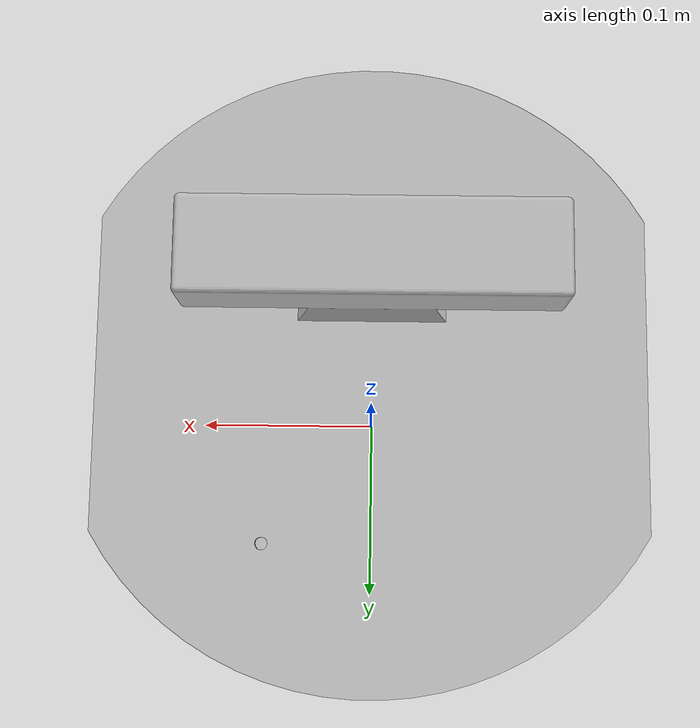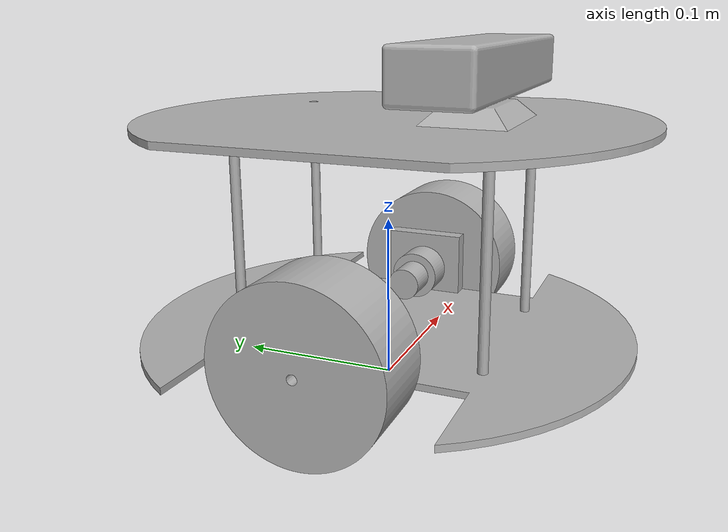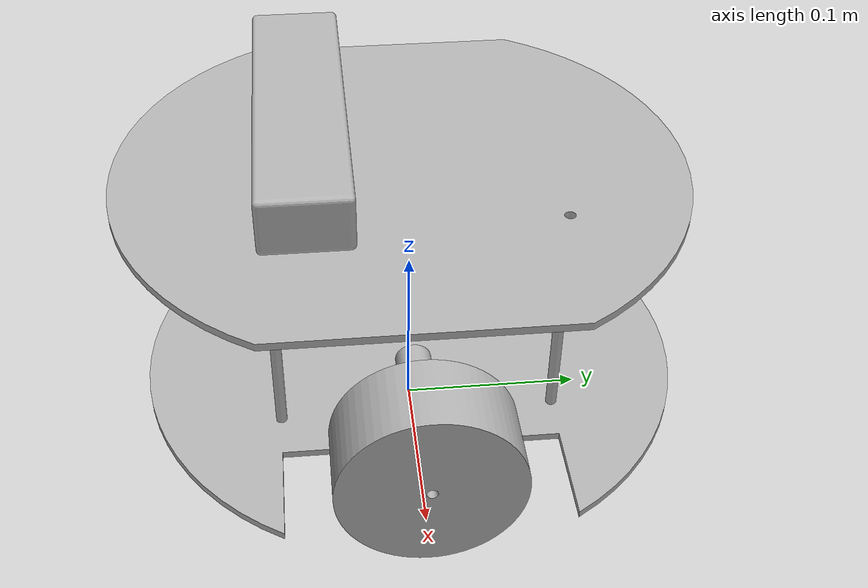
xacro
<?xml version="1.0" ?>
<robot name="kinectbot" xmlns:xacro="http://www.ros.org/wiki/xacro">

<xacro:include filename="$(find kinectbot_description)/urdf/materials.xacro" />
<xacro:include filename="$(find kinectbot_description)/gazebo/kinectbot_materials.gazebo" />
<xacro:include filename="$(find kinectbot_description)/gazebo/kinectbot_plugins.gazebo" />
<xacro:include filename="$(find kinectbot_description)/gazebo/kinectbot_physics.gazebo" />

<link name="base_link">
  <inertial>
    <origin rpy="0 0 0" xyz="0.0 6.126832052068927e-15 0.03551931309841485"/>
    <mass value="0.28304512232760054"/>
    <inertia ixx="0.001756" ixy="0.0" ixz="0.0" iyy="0.000924" iyz="-0.0" izz="0.002629"/>
  </inertial>
  <visual>
    <origin rpy="0 0 0" xyz="0 0 0"/>
    <geometry>
      <mesh filename="package://kinectbot_description/meshes/base_link.stl" scale="0.001 0.001 0.001"/>
    </geometry>
    <material name="silver"/>
  </visual>
  <collision>
    <origin rpy="0 0 0" xyz="0 0 0"/>
    <geometry>
      <mesh filename="package://kinectbot_description/meshes/base_link.stl" scale="0.001 0.001 0.001"/>
    </geometry>
  </collision>
</link>

<link name="motor_left_1">
  <inertial>
    <origin rpy="0 0 0" xyz="0.02352734922861146 9.900213718158758e-15 2.0816681711721685e-17"/>
    <mass value="0.026610672076673177"/>
    <inertia ixx="2e-06" ixy="0.0" ixz="-0.0" iyy="6e-06" iyz="-0.0" izz="6e-06"/>
  </inertial>
  <visual>
    <origin rpy="0 0 0" xyz="0.075 -0.0 -0.05005"/>
    <geometry>
      <mesh filename="package://kinectbot_description/meshes/motor_left_1.stl" scale="0.001 0.001 0.001"/>
    </geometry>
    <material name="silver"/>
  </visual>
  <collision>
    <origin rpy="0 0 0" xyz="0.075 -0.0 -0.05005"/>
    <geometry>
      <mesh filename="package://kinectbot_description/meshes/motor_left_1.stl" scale="0.001 0.001 0.001"/>
    </geometry>
  </collision>
</link>

<link name="motor_right_1">
  <inertial>
    <origin rpy="0 0 0" xyz="-0.023527349228611473 -9.900213718158753e-15 0.0"/>
    <mass value="0.02661067207667319"/>
    <inertia ixx="2e-06" ixy="0.0" ixz="-0.0" iyy="6e-06" iyz="0.0" izz="6e-06"/>
  </inertial>
  <visual>
    <origin rpy="0 0 0" xyz="-0.075 -0.0 -0.05005"/>
    <geometry>
      <mesh filename="package://kinectbot_description/meshes/motor_right_1.stl" scale="0.001 0.001 0.001"/>
    </geometry>
    <material name="silver"/>
  </visual>
  <collision>
    <origin rpy="0 0 0" xyz="-0.075 -0.0 -0.05005"/>
    <geometry>
      <mesh filename="package://kinectbot_description/meshes/motor_right_1.stl" scale="0.001 0.001 0.001"/>
    </geometry>
  </collision>
</link>

<link name="wheel_right_1">
  <inertial>
    <origin rpy="0 0 0" xyz="0.022499999999999992 -1.1500351399691738e-15 2.7755575615628914e-17"/>
    <mass value="0.3275058505088574"/>
    <inertia ixx="0.000411" ixy="-0.0" ixz="0.0" iyy="0.000261" iyz="-0.0" izz="0.000261"/>
  </inertial>
  <visual>
    <origin rpy="0 0 0" xyz="-0.08 0.0 -0.05005"/>
    <geometry>
      <mesh filename="package://kinectbot_description/meshes/wheel_right_1.stl" scale="0.001 0.001 0.001"/>
    </geometry>
    <material name="silver"/>
  </visual>
  <collision>
    <origin rpy="0 0 0" xyz="-0.08 0.0 -0.05005"/>
    <geometry>
      <mesh filename="package://kinectbot_description/meshes/wheel_right_1.stl" scale="0.001 0.001 0.001"/>
    </geometry>
  </collision>
</link>

<link name="wheel_left_1">
  <inertial>
    <origin rpy="0 0 0" xyz="-0.022500000000000075 1.1446193712846546e-15 6.245004513516506e-17"/>
    <mass value="0.32750585050885755"/>
    <inertia ixx="0.000411" ixy="-0.0" ixz="0.0" iyy="0.000261" iyz="-0.0" izz="0.000261"/>
  </inertial>
  <visual>
    <origin rpy="0 0 0" xyz="0.08 -0.0 -0.05005"/>
    <geometry>
      <mesh filename="package://kinectbot_description/meshes/wheel_left_1.stl" scale="0.001 0.001 0.001"/>
    </geometry>
    <material name="silver"/>
  </visual>
  <collision>
    <origin rpy="0 0 0" xyz="0.08 -0.0 -0.05005"/>
    <geometry>
      <mesh filename="package://kinectbot_description/meshes/wheel_left_1.stl" scale="0.001 0.001 0.001"/>
    </geometry>
  </collision>
</link>

<link name="castor_rear_1">
  <inertial>
    <origin rpy="0 0 0" xyz="5.0260617188559307e-17 0.0 -0.012749999999999945"/>
    <mass value="0.02099369290761378"/>
    <inertia ixx="2e-06" ixy="-0.0" ixz="-0.0" iyy="2e-06" iyz="-0.0" izz="2e-06"/>
  </inertial>
  <visual>
    <origin rpy="0 0 0" xyz="-0.0 0.115 -0.03"/>
    <geometry>
      <mesh filename="package://kinectbot_description/meshes/castor_rear_1.stl" scale="0.001 0.001 0.001"/>
    </geometry>
    <material name="silver"/>
  </visual>
  <collision>
    <origin rpy="0 0 0" xyz="-0.0 0.115 -0.03"/>
    <geometry>
      <mesh filename="package://kinectbot_description/meshes/castor_rear_1.stl" scale="0.001 0.001 0.001"/>
    </geometry>
  </collision>
</link>

<link name="castor_front_1">
  <inertial>
    <origin rpy="0 0 0" xyz="5.0260617188559307e-17 0.0 -0.012749999999999945"/>
    <mass value="0.02099369290761378"/>
    <inertia ixx="2e-06" ixy="-0.0" ixz="-0.0" iyy="2e-06" iyz="0.0" izz="2e-06"/>
  </inertial>
  <visual>
    <origin rpy="0 0 0" xyz="-0.0 -0.115 -0.03"/>
    <geometry>
      <mesh filename="package://kinectbot_description/meshes/castor_front_1.stl" scale="0.001 0.001 0.001"/>
    </geometry>
    <material name="silver"/>
  </visual>
  <collision>
    <origin rpy="0 0 0" xyz="-0.0 -0.115 -0.03"/>
    <geometry>
      <mesh filename="package://kinectbot_description/meshes/castor_front_1.stl" scale="0.001 0.001 0.001"/>
    </geometry>
  </collision>
</link>

<link name="bolt_2_1">
  <inertial>
    <origin rpy="0 0 0" xyz="-1.3877787807814457e-17 1.3877787807814457e-17 0.06250000000000001"/>
    <mass value="0.004198738581522751"/>
    <inertia ixx="5e-06" ixy="0.0" ixz="0.0" iyy="5e-06" iyz="0.0" izz="0.0"/>
  </inertial>
  <visual>
    <origin rpy="0 0 0" xyz="-0.05 -0.075 -0.034"/>
    <geometry>
      <mesh filename="package://kinectbot_description/meshes/bolt_2_1.stl" scale="0.001 0.001 0.001"/>
    </geometry>
    <material name="silver"/>
  </visual>
  <collision>
    <origin rpy="0 0 0" xyz="-0.05 -0.075 -0.034"/>
    <geometry>
      <mesh filename="package://kinectbot_description/meshes/bolt_2_1.stl" scale="0.001 0.001 0.001"/>
    </geometry>
  </collision>
</link>

<link name="bolt_4_1">
  <inertial>
    <origin rpy="0 0 0" xyz="1.3877787807814457e-17 1.3877787807814457e-17 0.06250000000000001"/>
    <mass value="0.004198738581522751"/>
    <inertia ixx="5e-06" ixy="-0.0" ixz="0.0" iyy="5e-06" iyz="0.0" izz="0.0"/>
  </inertial>
  <visual>
    <origin rpy="0 0 0" xyz="0.05 -0.075 -0.034"/>
    <geometry>
      <mesh filename="package://kinectbot_description/meshes/bolt_4_1.stl" scale="0.001 0.001 0.001"/>
    </geometry>
    <material name="silver"/>
  </visual>
  <collision>
    <origin rpy="0 0 0" xyz="0.05 -0.075 -0.034"/>
    <geometry>
      <mesh filename="package://kinectbot_description/meshes/bolt_4_1.stl" scale="0.001 0.001 0.001"/>
    </geometry>
  </collision>
</link>

<link name="bolt_3_1">
  <inertial>
    <origin rpy="0 0 0" xyz="1.3877787807814457e-17 -2.7755575615628914e-17 0.06250000000000001"/>
    <mass value="0.004198738581522751"/>
    <inertia ixx="5e-06" ixy="-0.0" ixz="0.0" iyy="5e-06" iyz="-0.0" izz="0.0"/>
  </inertial>
  <visual>
    <origin rpy="0 0 0" xyz="0.05 0.075 -0.034"/>
    <geometry>
      <mesh filename="package://kinectbot_description/meshes/bolt_3_1.stl" scale="0.001 0.001 0.001"/>
    </geometry>
    <material name="silver"/>
  </visual>
  <collision>
    <origin rpy="0 0 0" xyz="0.05 0.075 -0.034"/>
    <geometry>
      <mesh filename="package://kinectbot_description/meshes/bolt_3_1.stl" scale="0.001 0.001 0.001"/>
    </geometry>
  </collision>
</link>

<link name="bolt_1_1">
  <inertial>
    <origin rpy="0 0 0" xyz="-1.3877787807814457e-17 -2.7755575615628914e-17 0.06250000000000001"/>
    <mass value="0.004198738581522751"/>
    <inertia ixx="5e-06" ixy="-0.0" ixz="0.0" iyy="5e-06" iyz="-0.0" izz="0.0"/>
  </inertial>
  <visual>
    <origin rpy="0 0 0" xyz="-0.05 0.075 -0.034"/>
    <geometry>
      <mesh filename="package://kinectbot_description/meshes/bolt_1_1.stl" scale="0.001 0.001 0.001"/>
    </geometry>
    <material name="silver"/>
  </visual>
  <collision>
    <origin rpy="0 0 0" xyz="-0.05 0.075 -0.034"/>
    <geometry>
      <mesh filename="package://kinectbot_description/meshes/bolt_1_1.stl" scale="0.001 0.001 0.001"/>
    </geometry>
  </collision>
</link>

<link name="mid_plate_1">
  <inertial>
    <origin rpy="0 0 0" xyz="-0.050021232975208656 -0.08003397276033417 0.0020000000000000018"/>
    <mass value="0.31639380088590274"/>
    <inertia ixx="0.001867" ixy="1e-06" ixz="-0.0" iyy="0.00152" iyz="0.0" izz="0.003386"/>
  </inertial>
  <visual>
    <origin rpy="0 0 0" xyz="-0.05 -0.075 -0.159"/>
    <geometry>
      <mesh filename="package://kinectbot_description/meshes/mid_plate_1.stl" scale="0.001 0.001 0.001"/>
    </geometry>
    <material name="silver"/>
  </visual>
  <collision>
    <origin rpy="0 0 0" xyz="-0.05 -0.075 -0.159"/>
    <geometry>
      <mesh filename="package://kinectbot_description/meshes/mid_plate_1.stl" scale="0.001 0.001 0.001"/>
    </geometry>
  </collision>
</link>

<link name="kinect_1">
  <inertial>
    <origin rpy="0 0 0" xyz="-0.0003153296233320502 -0.00012448819169019743 0.027636453446634818"/>
    <mass value="0.3185446036288292"/>
    <inertia ixx="9.4e-05" ixy="-0.0" ixz="0.0" iyy="0.000806" iyz="0.0" izz="0.000821"/>
  </inertial>
  <visual>
    <origin rpy="0 0 0" xyz="-0.0 0.055 -0.163"/>
    <geometry>
      <mesh filename="package://kinectbot_description/meshes/kinect_1.stl" scale="0.001 0.001 0.001"/>
    </geometry>
    <material name="silver"/>
  </visual>
  <collision>
    <origin rpy="0 0 0" xyz="-0.0 0.055 -0.163"/>
    <geometry>
      <mesh filename="package://kinectbot_description/meshes/kinect_1.stl" scale="0.001 0.001 0.001"/>
    </geometry>
  </collision>
</link>

<joint name="Rigid1" type="fixed">
  <origin rpy="0 0 0" xyz="-0.075 0.0 0.05005"/>
  <parent link="base_link"/>
  <child link="motor_left_1"/>
</joint>

<joint name="Rigid2" type="fixed">
  <origin rpy="0 0 0" xyz="0.075 0.0 0.05005"/>
  <parent link="base_link"/>
  <child link="motor_right_1"/>
</joint>

<joint name="Rev3" type="continuous">
  <origin rpy="0 0 0" xyz="0.005 0.0 0.0"/>
  <parent link="motor_right_1"/>
  <child link="wheel_right_1"/>
  <axis xyz="1.0 0.0 0.0"/>
</joint>

<joint name="Rev4" type="continuous">
  <origin rpy="0 0 0" xyz="-0.005 0.0 0.0"/>
  <parent link="motor_left_1"/>
  <child link="wheel_left_1"/>
  <axis xyz="1.0 0.0 0.0"/>
</joint>

<joint name="Rigid5" type="fixed">
  <origin rpy="0 0 0" xyz="0.0 -0.115 0.03"/>
  <parent link="base_link"/>
  <child link="castor_rear_1"/>
</joint>

<joint name="Rigid6" type="fixed">
  <origin rpy="0 0 0" xyz="0.0 0.115 0.03"/>
  <parent link="base_link"/>
  <child link="castor_front_1"/>
</joint>

<joint name="Rigid8" type="fixed">
  <origin rpy="0 0 0" xyz="0.05 0.075 0.034"/>
  <parent link="base_link"/>
  <child link="bolt_2_1"/>
</joint>

<joint name="Rigid9" type="fixed">
  <origin rpy="0 0 0" xyz="-0.05 0.075 0.034"/>
  <parent link="base_link"/>
  <child link="bolt_4_1"/>
</joint>

<joint name="Rigid10" type="fixed">
  <origin rpy="0 0 0" xyz="-0.05 -0.075 0.034"/>
  <parent link="base_link"/>
  <child link="bolt_3_1"/>
</joint>

<joint name="Rigid11" type="fixed">
  <origin rpy="0 0 0" xyz="0.05 -0.075 0.034"/>
  <parent link="base_link"/>
  <child link="bolt_1_1"/>
</joint>

<joint name="Rigid12" type="fixed">
  <origin rpy="0 0 0" xyz="0.0 0.0 0.125"/>
  <parent link="bolt_2_1"/>
  <child link="mid_plate_1"/>
</joint>

<joint name="Rigid13" type="fixed">
  <origin rpy="0 0 0" xyz="-0.05 -0.13 0.004"/>
  <parent link="mid_plate_1"/>
  <child link="kinect_1"/>
</joint>

</robot>

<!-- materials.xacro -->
<robot name="kinectbot" xmlns:xacro="http://www.ros.org/wiki/xacro" >

<material name="silver">
  <color rgba="0.700 0.700 0.700 1.000"/>
</material>

</robot>

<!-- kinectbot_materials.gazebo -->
<robot name="kinectbot" xmlns:xacro="http://www.ros.org/wiki/xacro" >

<xacro:property name="body_color" value="Gazebo/White" />
<xacro:property name="wheel_color" value="Gazebo/Black" />
<xacro:property name="kinect_color" value="Gazebo/RedBright" />
<xacro:property name="castor_color" value="Gazebo/Blue" />

<gazebo>
  <plugin filename="libgazebo_ros_control.so" name="control"/>
</gazebo>
<gazebo reference="base_link">
  <material>${body_color}</material>
</gazebo>

<gazebo reference="motor_left_1">
  <material>${body_color}</material>
</gazebo>

<gazebo reference="motor_right_1">
  <material>${body_color}</material>
</gazebo>

<gazebo reference="wheel_right_1">
  <material>${wheel_color}</material>
</gazebo>

<gazebo reference="wheel_left_1">
  <material>${wheel_color}</material>
</gazebo>

<gazebo reference="castor_rear_1">
  <material>${castor_color}</material>
</gazebo>

<gazebo reference="castor_front_1">
  <material>${castor_color}</material>
</gazebo>

<gazebo reference="bolt_2_1">
  <material>${body_color}</material>
</gazebo>

<gazebo reference="bolt_4_1">
  <material>${body_color}</material>
</gazebo>

<gazebo reference="bolt_3_1">
  <material>${body_color}</material>
</gazebo>

<gazebo reference="bolt_1_1">
  <material>${body_color}</material>
</gazebo>

<gazebo reference="mid_plate_1">
  <material>${body_color}</material>
</gazebo>

<gazebo reference="kinect_1">
  <material>${kinect_color}</material>
</gazebo>

</robot>
